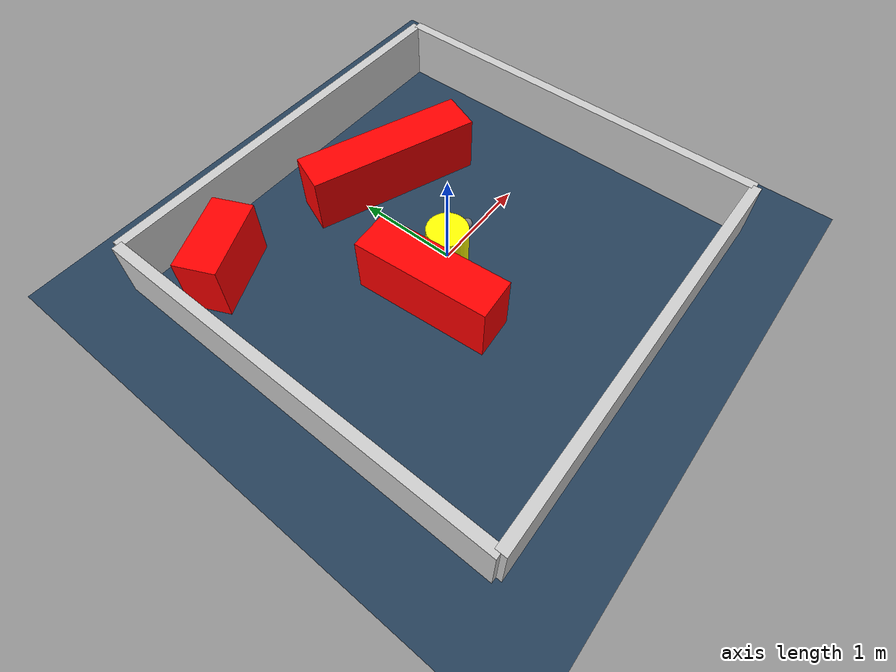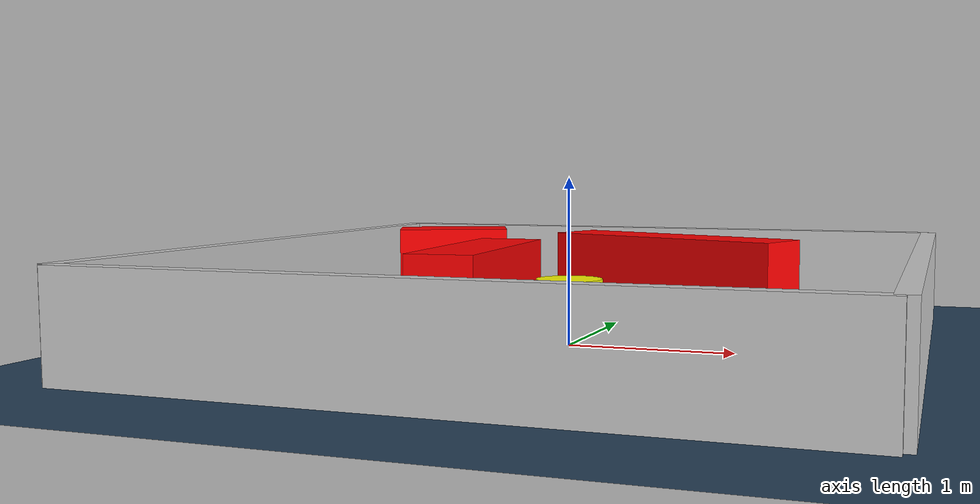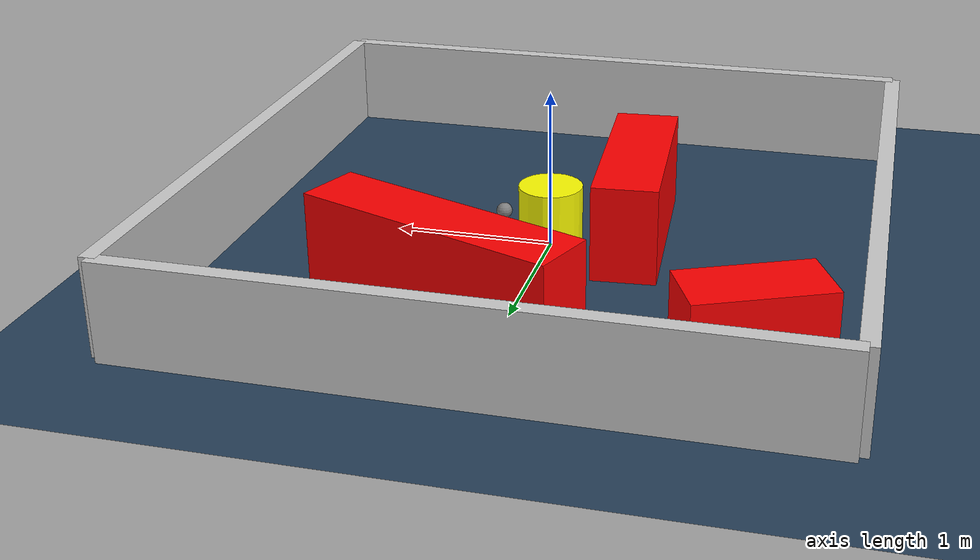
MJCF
<?xml version="1.0" ?>
<mujoco model="generated_environment">
  <option timestep="0.01" integrator="RK4" cone="elliptic"/>
  <default>
    <geom density="1"/>
  </default>
  <asset>
    <texture builtin="gradient" height="3072" rgb1="0.3 0.5 0.7" rgb2="0 0 0" type="skybox" width="512"/>
    <texture builtin="checker" height="300" mark="edge" markrgb="0.8 0.8 0.8" name="groundplane" rgb1="0.2 0.3 0.4" rgb2="0.1 0.2 0.3" type="2d" width="300"/>
    <material name="groundplane" reflectance="0.2" texrepeat="5 5" texture="groundplane" texuniform="true"/>
    <material name="robot" rgba="0.0 1.0 0.0 1"/>
  </asset>
  <worldbody>
    <light dir="0 0 -1" directional="true" pos="0 0 1.5"/>
    <geom condim="4" friction="1.0 0.005 0.001" material="groundplane" name="floor" size="0 0 0.05" type="plane"/>
    <body name="walls">
      <geom name="wall_1" condim="4" pos="-2.0 0.0 0.3" rgba="0.800000011920929 0.800000011920929 0.800000011920929 1.0" size="0.05 2.0 0.3" type="box"/>
      <geom name="wall_2" condim="4" pos="2.0 0.0 0.3" rgba="0.800000011920929 0.800000011920929 0.800000011920929 1.0" size="0.05 2.0 0.3" type="box"/>
      <geom name="wall_3" condim="4" pos="0.0 -2.0 0.3" rgba="0.800000011920929 0.800000011920929 0.800000011920929 1.0" size="2.0 0.05 0.3" type="box"/>
      <geom name="wall_4" condim="4" pos="0.0 2.0 0.3" rgba="0.800000011920929 0.800000011920929 0.800000011920929 1.0" size="2.0 0.05 0.3" type="box"/>
    </body>
    <body name="robot">
      <joint name="joint_x" type="slide" pos="0 0 0" axis="1 0 0"/>
      <joint name="joint_y" type="slide" pos="0 0 0" axis="0 1 0"/>
      <geom name="robot" type="sphere" pos="0.3 0.0 0.2" size="0.05" mass="5." friction="1.0 0.005 0.0001" condim="4" rgba="0.5 0.5 0.5 1.0"/>
      <site name="sensor_ball"/>
    </body>
    <body name="obstacle_movable_1">
      <geom name="obstacle_movable_1" condim="4" pos="0.0 0.0 0.2" euler="0 0 0.0" friction="1.0 0.005 0.001" rgba="1.0 1.0 0.0 1.0" size="0.2 0.2 0.0" type="cylinder" mass="0.1"/>
      <joint type="free"/>
    </body>
    <body name="obstacle_2_static">
      <geom name="obstacle_2_static" condim="4" pos="-1.4139345798785434 1.4449929600402849 0.3" euler="0 0 204.23095887435966" friction="1.0 0.005 0.001" rgba="1 0 0 1" size="0.39189583522764626 0.2 0.3" type="box"/>
    </body>
    <body name="obstacle_3_static">
      <geom name="obstacle_3_static" condim="4" pos="-0.4976866929919266 -0.21678740386026174 0.3" euler="0 0 94.24480738275312" friction="1.0 0.005 0.001" rgba="1 0 0 1" size="0.6549014079169064 0.2 0.3" type="box"/>
    </body>
    <body name="obstacle_4_static">
      <geom name="obstacle_4_static" condim="4" pos="0.3796002272530381 1.0413784568402484 0.3" euler="0 0 338.87549320583764" friction="1.0 0.005 0.001" rgba="1 0 0 1" size="0.8446561032070234 0.2 0.3" type="box"/>
    </body>
  </worldbody>
  <actuator>
    <motor name="actuator_x" joint="joint_x" gear="1" ctrlrange="-1 1"/>
    <motor name="actuator_y" joint="joint_y" gear="1" ctrlrange="-1 1"/>
  </actuator>
</mujoco>
